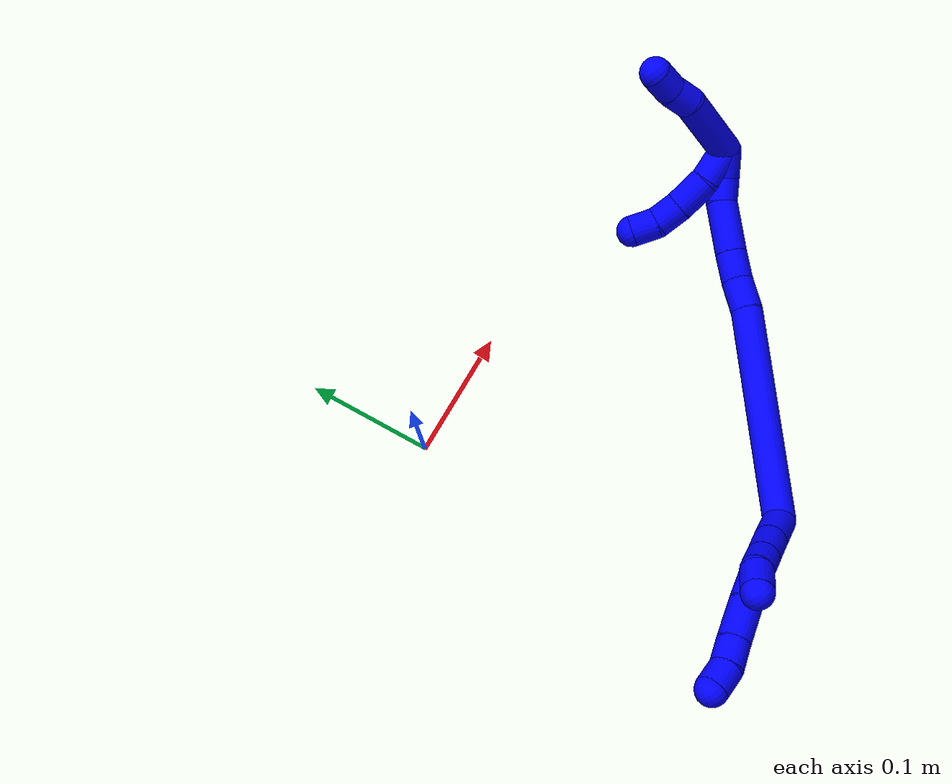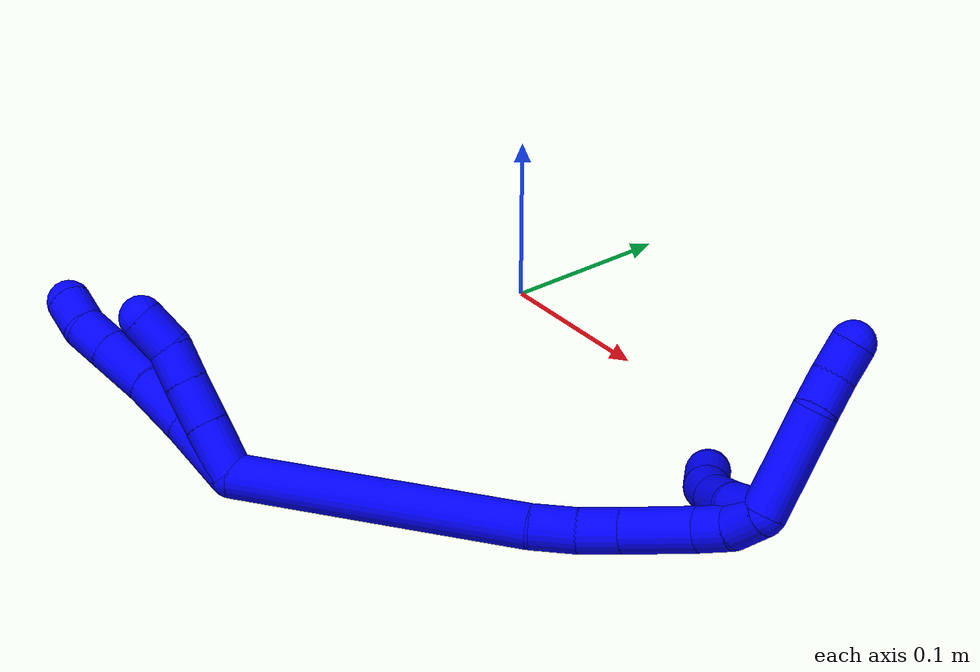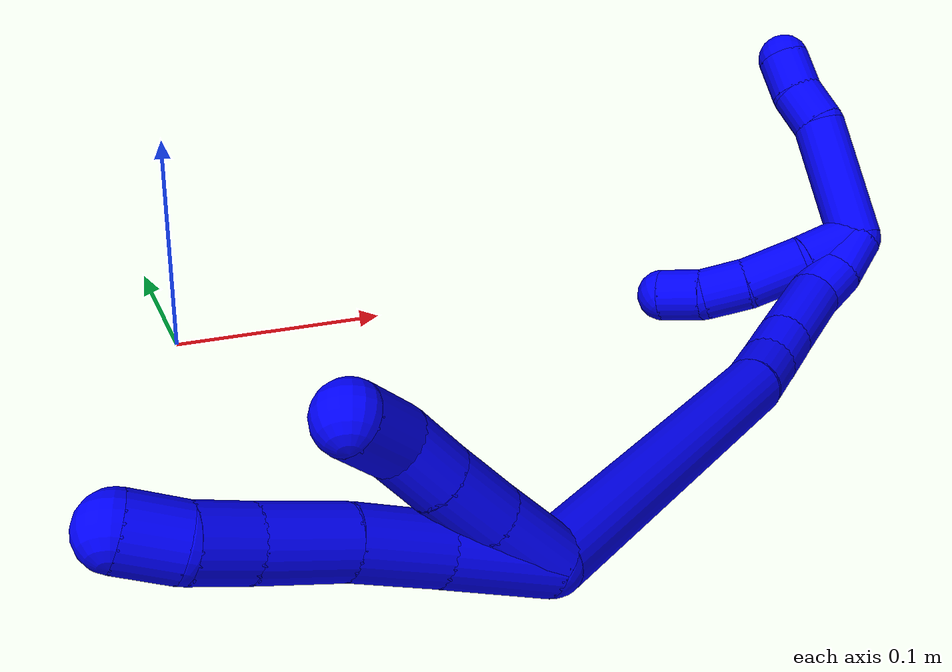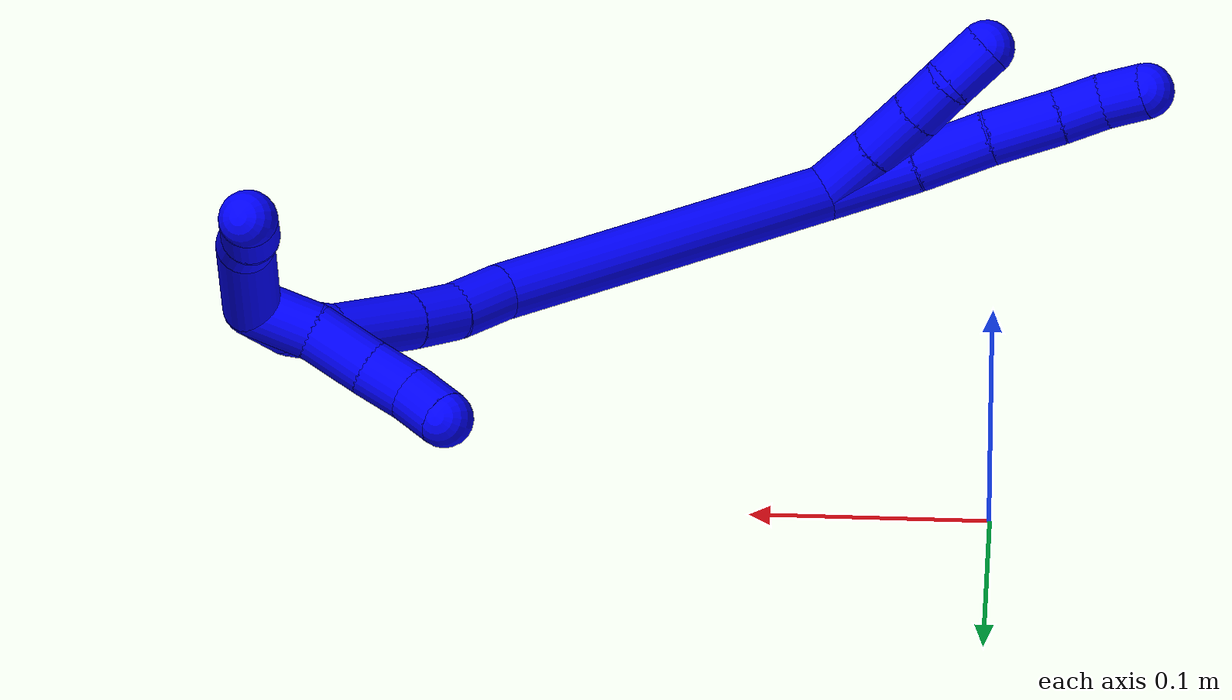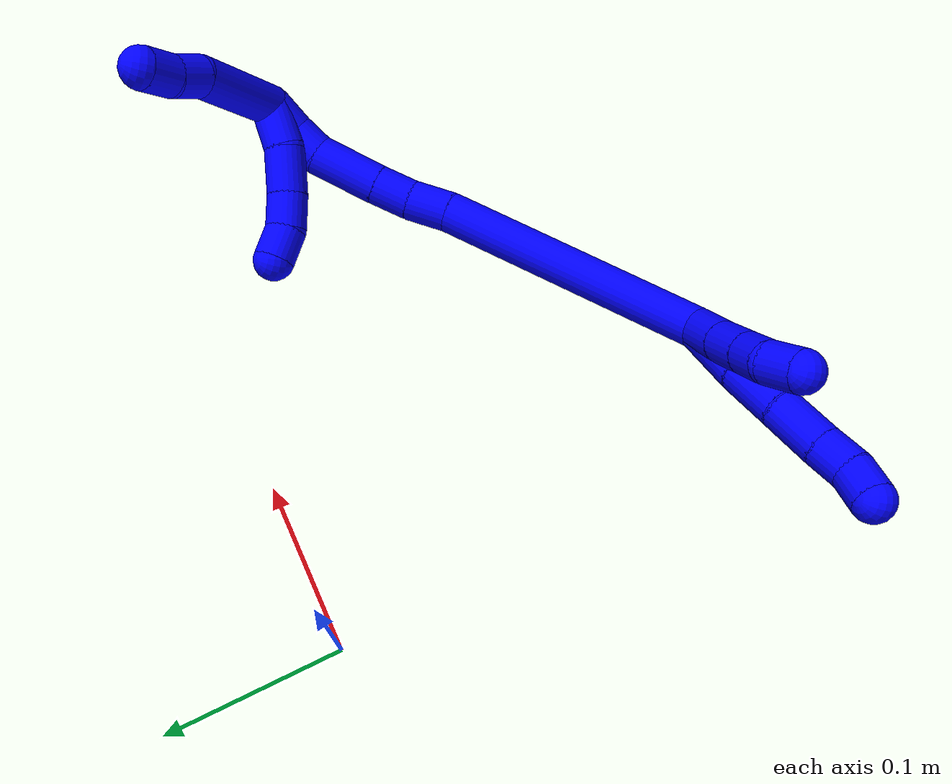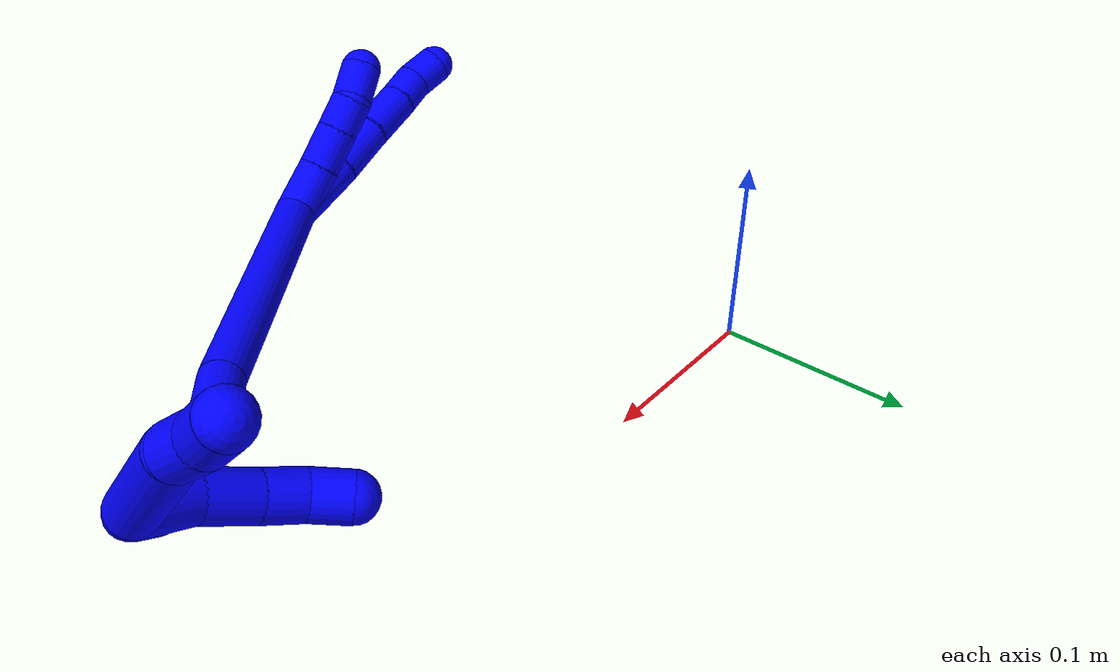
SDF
<sdf version="1.7">
 <world name="default">
  <model name="1">
   <static>0</static>
   <link name="1">
    <collision name="collision-cylinder-e_1_2_8">
     <pose>-0.013292 -0.016624 0.002134 1.4431 -0.670501 -0.594869</pose>
     <geometry><cylinder><radius>0.0125</radius><length>0.042782</length></cylinder></geometry>
     <surface>
      <friction><ode><mu>1.16</mu><mu2>1.16</mu2><slip1>0</slip1><slip2>0</slip2></ode></friction>
      <contact><ode><kp>1e+06</kp><kd>1</kd><max_vel>0</max_vel><min_depth>0.001</min_depth></ode></contact>
     </surface>
    </collision>
    <visual name="visual-cylinder-e_1_2_8">
     <pose>-0.013292 -0.016624 0.002134 1.4431 -0.670501 -0.594869</pose>
     <geometry><cylinder><radius>0.0125</radius><length>0.042782</length></cylinder></geometry>
     <material><ambient>0 0 1 1</ambient></material>
    </visual>
    <collision name="collision-cylinder-e_2_8_9">
     <pose>-0.037803 -0.045818 0.006668 1.38218 -0.719754 -0.603463</pose>
     <geometry><cylinder><radius>0.0125</radius><length>0.034038</length></cylinder></geometry>
     <surface>
      <friction><ode><mu>1.16</mu><mu2>1.16</mu2><slip1>0</slip1><slip2>0</slip2></ode></friction>
      <contact><ode><kp>1e+06</kp><kd>1</kd><max_vel>0</max_vel><min_depth>0.001</min_depth></ode></contact>
     </surface>
    </collision>
    <visual name="visual-cylinder-e_2_8_9">
     <pose>-0.037803 -0.045818 0.006668 1.38218 -0.719754 -0.603463</pose>
     <geometry><cylinder><radius>0.0125</radius><length>0.034038</length></cylinder></geometry>
     <material><ambient>0 0 1 1</ambient></material>
    </visual>
    <collision name="collision-cylinder-e_3_9_10">
     <pose>-0.059003 -0.070607 0.012563 1.29221 -0.665801 -0.510113</pose>
     <geometry><cylinder><radius>0.0125</radius><length>0.032318</length></cylinder></geometry>
     <surface>
      <friction><ode><mu>1.16</mu><mu2>1.16</mu2><slip1>0</slip1><slip2>0</slip2></ode></friction>
      <contact><ode><kp>1e+06</kp><kd>1</kd><max_vel>0</max_vel><min_depth>0.001</min_depth></ode></contact>
     </surface>
    </collision>
    <visual name="visual-cylinder-e_3_9_10">
     <pose>-0.059003 -0.070607 0.012563 1.29221 -0.665801 -0.510113</pose>
     <geometry><cylinder><radius>0.0125</radius><length>0.032318</length></cylinder></geometry>
     <material><ambient>0 0 1 1</ambient></material>
    </visual>
    <collision name="collision-cylinder-e_4_10_11">
     <pose>-0.075788 -0.090379 0.018299 1.2823 -0.712213 -0.541579</pose>
     <geometry><cylinder><radius>0.0125</radius><length>0.020822</length></cylinder></geometry>
     <surface>
      <friction><ode><mu>1.16</mu><mu2>1.16</mu2><slip1>0</slip1><slip2>0</slip2></ode></friction>
      <contact><ode><kp>1e+06</kp><kd>1</kd><max_vel>0</max_vel><min_depth>0.001</min_depth></ode></contact>
     </surface>
    </collision>
    <visual name="visual-cylinder-e_4_10_11">
     <pose>-0.075788 -0.090379 0.018299 1.2823 -0.712213 -0.541579</pose>
     <geometry><cylinder><radius>0.0125</radius><length>0.020822</length></cylinder></geometry>
     <material><ambient>0 0 1 1</ambient></material>
    </visual>
    <collision name="collision-cylinder-e_5_11_6">
     <pose>-0.08814 -0.10627 0.020207 1.61086 -0.586874 -0.609439</pose>
     <geometry><cylinder><radius>0.0125</radius><length>0.02004</length></cylinder></geometry>
     <surface>
      <friction><ode><mu>1.16</mu><mu2>1.16</mu2><slip1>0</slip1><slip2>0</slip2></ode></friction>
      <contact><ode><kp>1e+06</kp><kd>1</kd><max_vel>0</max_vel><min_depth>0.001</min_depth></ode></contact>
     </surface>
    </collision>
    <visual name="visual-cylinder-e_5_11_6">
     <pose>-0.08814 -0.10627 0.020207 1.61086 -0.586874 -0.609439</pose>
     <geometry><cylinder><radius>0.0125</radius><length>0.02004</length></cylinder></geometry>
     <material><ambient>0 0 1 1</ambient></material>
    </visual>
    <collision name="collision-cylinder-e_1_2_12">
     <pose>-0.012804 -0.008032 -0.002711 1.89627 -0.985976 -1.28483</pose>
     <geometry><cylinder><radius>0.0125</radius><length>0.030711</length></cylinder></geometry>
     <surface>
      <friction><ode><mu>1.16</mu><mu2>1.16</mu2><slip1>0</slip1><slip2>0</slip2></ode></friction>
      <contact><ode><kp>1e+06</kp><kd>1</kd><max_vel>0</max_vel><min_depth>0.001</min_depth></ode></contact>
     </surface>
    </collision>
    <visual name="visual-cylinder-e_1_2_12">
     <pose>-0.012804 -0.008032 -0.002711 1.89627 -0.985976 -1.28483</pose>
     <geometry><cylinder><radius>0.0125</radius><length>0.030711</length></cylinder></geometry>
     <material><ambient>0 0 1 1</ambient></material>
    </visual>
    <collision name="collision-cylinder-e_2_12_13">
     <pose>-0.03655 -0.022387 -0.007626 1.90637 -1.02163 -1.33599</pose>
     <geometry><cylinder><radius>0.0125</radius><length>0.025658</length></cylinder></geometry>
     <surface>
      <friction><ode><mu>1.16</mu><mu2>1.16</mu2><slip1>0</slip1><slip2>0</slip2></ode></friction>
      <contact><ode><kp>1e+06</kp><kd>1</kd><max_vel>0</max_vel><min_depth>0.001</min_depth></ode></contact>
     </surface>
    </collision>
    <visual name="visual-cylinder-e_2_12_13">
     <pose>-0.03655 -0.022387 -0.007626 1.90637 -1.02163 -1.33599</pose>
     <geometry><cylinder><radius>0.0125</radius><length>0.025658</length></cylinder></geometry>
     <material><ambient>0 0 1 1</ambient></material>
    </visual>
    <collision name="collision-cylinder-e_3_13_14">
     <pose>-0.05648 -0.03374 -0.01196 1.97099 -1.02469 -1.40738</pose>
     <geometry><cylinder><radius>0.0125</radius><length>0.021034</length></cylinder></geometry>
     <surface>
      <friction><ode><mu>1.16</mu><mu2>1.16</mu2><slip1>0</slip1><slip2>0</slip2></ode></friction>
      <contact><ode><kp>1e+06</kp><kd>1</kd><max_vel>0</max_vel><min_depth>0.001</min_depth></ode></contact>
     </surface>
    </collision>
    <visual name="visual-cylinder-e_3_13_14">
     <pose>-0.05648 -0.03374 -0.01196 1.97099 -1.02469 -1.40738</pose>
     <geometry><cylinder><radius>0.0125</radius><length>0.021034</length></cylinder></geometry>
     <material><ambient>0 0 1 1</ambient></material>
    </visual>
    <collision name="collision-cylinder-e_4_14_5">
     <pose>-0.075611 -0.043574 -0.012788 1.30646 -1.11474 -0.890183</pose>
     <geometry><cylinder><radius>0.0125</radius><length>0.022597</length></cylinder></geometry>
     <surface>
      <friction><ode><mu>1.16</mu><mu2>1.16</mu2><slip1>0</slip1><slip2>0</slip2></ode></friction>
      <contact><ode><kp>1e+06</kp><kd>1</kd><max_vel>0</max_vel><min_depth>0.001</min_depth></ode></contact>
     </surface>
    </collision>
    <visual name="visual-cylinder-e_4_14_5">
     <pose>-0.075611 -0.043574 -0.012788 1.30646 -1.11474 -0.890183</pose>
     <geometry><cylinder><radius>0.0125</radius><length>0.022597</length></cylinder></geometry>
     <material><ambient>0 0 1 1</ambient></material>
    </visual>
    <collision name="collision-cylinder-e_1_2_15">
     <pose>0.044549 0.042963 -0.056622 -2.49251 0.559876 -1.41421</pose>
     <geometry><cylinder><radius>0.0125</radius><length>0.167768</length></cylinder></geometry>
     <surface>
      <friction><ode><mu>1.16</mu><mu2>1.16</mu2><slip1>0</slip1><slip2>0</slip2></ode></friction>
      <contact><ode><kp>1e+06</kp><kd>1</kd><max_vel>0</max_vel><min_depth>0.001</min_depth></ode></contact>
     </surface>
    </collision>
    <visual name="visual-cylinder-e_1_2_15">
     <pose>0.044549 0.042963 -0.056622 -2.49251 0.559876 -1.41421</pose>
     <geometry><cylinder><radius>0.0125</radius><length>0.167768</length></cylinder></geometry>
     <material><ambient>0 0 1 1</ambient></material>
    </visual>
    <collision name="collision-cylinder-e_2_15_16">
     <pose>0.096213 0.09086 -0.122879 -2.66825 0.581444 -1.78467</pose>
     <geometry><cylinder><radius>0.0125</radius><length>0.025907</length></cylinder></geometry>
     <surface>
      <friction><ode><mu>1.16</mu><mu2>1.16</mu2><slip1>0</slip1><slip2>0</slip2></ode></friction>
      <contact><ode><kp>1e+06</kp><kd>1</kd><max_vel>0</max_vel><min_depth>0.001</min_depth></ode></contact>
     </surface>
    </collision>
    <visual name="visual-cylinder-e_2_15_16">
     <pose>0.096213 0.09086 -0.122879 -2.66825 0.581444 -1.78467</pose>
     <geometry><cylinder><radius>0.0125</radius><length>0.025907</length></cylinder></geometry>
     <material><ambient>0 0 1 1</ambient></material>
    </visual>
    <collision name="collision-cylinder-e_3_16_17">
     <pose>0.10823 0.10112 -0.141677 -2.61515 0.43332 -1.36984</pose>
     <geometry><cylinder><radius>0.0125</radius><length>0.023356</length></cylinder></geometry>
     <surface>
      <friction><ode><mu>1.16</mu><mu2>1.16</mu2><slip1>0</slip1><slip2>0</slip2></ode></friction>
      <contact><ode><kp>1e+06</kp><kd>1</kd><max_vel>0</max_vel><min_depth>0.001</min_depth></ode></contact>
     </surface>
    </collision>
    <visual name="visual-cylinder-e_3_16_17">
     <pose>0.10823 0.10112 -0.141677 -2.61515 0.43332 -1.36984</pose>
     <geometry><cylinder><radius>0.0125</radius><length>0.023356</length></cylinder></geometry>
     <material><ambient>0 0 1 1</ambient></material>
    </visual>
    <collision name="collision-cylinder-e_4_17_18">
     <pose>0.121093 0.116513 -0.16718 -2.58938 0.393139 -1.22524</pose>
     <geometry><cylinder><radius>0.0125</radius><length>0.041554</length></cylinder></geometry>
     <surface>
      <friction><ode><mu>1.16</mu><mu2>1.16</mu2><slip1>0</slip1><slip2>0</slip2></ode></friction>
      <contact><ode><kp>1e+06</kp><kd>1</kd><max_vel>0</max_vel><min_depth>0.001</min_depth></ode></contact>
     </surface>
    </collision>
    <visual name="visual-cylinder-e_4_17_18">
     <pose>0.121093 0.116513 -0.16718 -2.58938 0.393139 -1.22524</pose>
     <geometry><cylinder><radius>0.0125</radius><length>0.041554</length></cylinder></geometry>
     <material><ambient>0 0 1 1</ambient></material>
    </visual>
    <collision name="collision-cylinder-e_5_18_19">
     <pose>0.13077 0.133427 -0.190688 -2.37923 0.171535 -0.422648</pose>
     <geometry><cylinder><radius>0.0125</radius><length>0.020122</length></cylinder></geometry>
     <surface>
      <friction><ode><mu>1.16</mu><mu2>1.16</mu2><slip1>0</slip1><slip2>0</slip2></ode></friction>
      <contact><ode><kp>1e+06</kp><kd>1</kd><max_vel>0</max_vel><min_depth>0.001</min_depth></ode></contact>
     </surface>
    </collision>
    <visual name="visual-cylinder-e_5_18_19">
     <pose>0.13077 0.133427 -0.190688 -2.37923 0.171535 -0.422648</pose>
     <geometry><cylinder><radius>0.0125</radius><length>0.020122</length></cylinder></geometry>
     <material><ambient>0 0 1 1</ambient></material>
    </visual>
    <collision name="collision-cylinder-e_6_19_1">
     <pose>0.131047 0.146721 -0.206207 -2.48401 -0.135639 0.393035</pose>
     <geometry><cylinder><radius>0.0125</radius><length>0.021294</length></cylinder></geometry>
     <surface>
      <friction><ode><mu>1.16</mu><mu2>1.16</mu2><slip1>0</slip1><slip2>0</slip2></ode></friction>
      <contact><ode><kp>1e+06</kp><kd>1</kd><max_vel>0</max_vel><min_depth>0.001</min_depth></ode></contact>
     </surface>
    </collision>
    <visual name="visual-cylinder-e_6_19_1">
     <pose>0.131047 0.146721 -0.206207 -2.48401 -0.135639 0.393035</pose>
     <geometry><cylinder><radius>0.0125</radius><length>0.021294</length></cylinder></geometry>
     <material><ambient>0 0 1 1</ambient></material>
    </visual>
    <collision name="collision-cylinder-e_1_1_20">
     <pose>0.116433 0.149737 -0.2412 3.0135 -0.455974 -2.60223</pose>
     <geometry><cylinder><radius>0.0125</radius><length>0.059841</length></cylinder></geometry>
     <surface>
      <friction><ode><mu>1.16</mu><mu2>1.16</mu2><slip1>0</slip1><slip2>0</slip2></ode></friction>
      <contact><ode><kp>1e+06</kp><kd>1</kd><max_vel>0</max_vel><min_depth>0.001</min_depth></ode></contact>
     </surface>
    </collision>
    <visual name="visual-cylinder-e_1_1_20">
     <pose>0.116433 0.149737 -0.2412 3.0135 -0.455974 -2.60223</pose>
     <geometry><cylinder><radius>0.0125</radius><length>0.059841</length></cylinder></geometry>
     <material><ambient>0 0 1 1</ambient></material>
    </visual>
    <collision name="collision-cylinder-e_2_20_21">
     <pose>0.100506 0.142647 -0.276809 2.75411 -0.276831 -1.23484</pose>
     <geometry><cylinder><radius>0.0125</radius><length>0.020132</length></cylinder></geometry>
     <surface>
      <friction><ode><mu>1.16</mu><mu2>1.16</mu2><slip1>0</slip1><slip2>0</slip2></ode></friction>
      <contact><ode><kp>1e+06</kp><kd>1</kd><max_vel>0</max_vel><min_depth>0.001</min_depth></ode></contact>
     </surface>
    </collision>
    <visual name="visual-cylinder-e_2_20_21">
     <pose>0.100506 0.142647 -0.276809 2.75411 -0.276831 -1.23484</pose>
     <geometry><cylinder><radius>0.0125</radius><length>0.020132</length></cylinder></geometry>
     <material><ambient>0 0 1 1</ambient></material>
    </visual>
    <collision name="collision-cylinder-e_3_21_4">
     <pose>0.094288 0.137356 -0.295025 2.96699 -0.353577 -2.2305</pose>
     <geometry><cylinder><radius>0.0125</radius><length>0.020027</length></cylinder></geometry>
     <surface>
      <friction><ode><mu>1.16</mu><mu2>1.16</mu2><slip1>0</slip1><slip2>0</slip2></ode></friction>
      <contact><ode><kp>1e+06</kp><kd>1</kd><max_vel>0</max_vel><min_depth>0.001</min_depth></ode></contact>
     </surface>
    </collision>
    <visual name="visual-cylinder-e_3_21_4">
     <pose>0.094288 0.137356 -0.295025 2.96699 -0.353577 -2.2305</pose>
     <geometry><cylinder><radius>0.0125</radius><length>0.020027</length></cylinder></geometry>
     <material><ambient>0 0 1 1</ambient></material>
    </visual>
    <collision name="collision-cylinder-e_1_1_22">
     <pose>0.129662 0.139802 -0.210023 1.24375 0.003854 0.002763</pose>
     <geometry><cylinder><radius>0.0125</radius><length>0.02823</length></cylinder></geometry>
     <surface>
      <friction><ode><mu>1.16</mu><mu2>1.16</mu2><slip1>0</slip1><slip2>0</slip2></ode></friction>
      <contact><ode><kp>1e+06</kp><kd>1</kd><max_vel>0</max_vel><min_depth>0.001</min_depth></ode></contact>
     </surface>
    </collision>
    <visual name="visual-cylinder-e_1_1_22">
     <pose>0.129662 0.139802 -0.210023 1.24375 0.003854 0.002763</pose>
     <geometry><cylinder><radius>0.0125</radius><length>0.02823</length></cylinder></geometry>
     <material><ambient>0 0 1 1</ambient></material>
    </visual>
    <collision name="collision-cylinder-e_2_22_23">
     <pose>0.132551 0.112475 -0.203365 1.41986 0.198068 0.170366</pose>
     <geometry><cylinder><radius>0.0125</radius><length>0.028805</length></cylinder></geometry>
     <surface>
      <friction><ode><mu>1.16</mu><mu2>1.16</mu2><slip1>0</slip1><slip2>0</slip2></ode></friction>
      <contact><ode><kp>1e+06</kp><kd>1</kd><max_vel>0</max_vel><min_depth>0.001</min_depth></ode></contact>
     </surface>
    </collision>
    <visual name="visual-cylinder-e_2_22_23">
     <pose>0.132551 0.112475 -0.203365 1.41986 0.198068 0.170366</pose>
     <geometry><cylinder><radius>0.0125</radius><length>0.028805</length></cylinder></geometry>
     <material><ambient>0 0 1 1</ambient></material>
    </visual>
    <collision name="collision-cylinder-e_3_23_24">
     <pose>0.137019 0.087647 -0.201123 1.55992 0.149247 0.147638</pose>
     <geometry><cylinder><radius>0.0125</radius><length>0.02198</length></cylinder></geometry>
     <surface>
      <friction><ode><mu>1.16</mu><mu2>1.16</mu2><slip1>0</slip1><slip2>0</slip2></ode></friction>
      <contact><ode><kp>1e+06</kp><kd>1</kd><max_vel>0</max_vel><min_depth>0.001</min_depth></ode></contact>
     </surface>
    </collision>
    <visual name="visual-cylinder-e_3_23_24">
     <pose>0.137019 0.087647 -0.201123 1.55992 0.149247 0.147638</pose>
     <geometry><cylinder><radius>0.0125</radius><length>0.02198</length></cylinder></geometry>
     <material><ambient>0 0 1 1</ambient></material>
    </visual>
    <collision name="collision-cylinder-e_4_24_3">
     <pose>0.14064 0.066965 -0.204136 1.87953 0.190543 0.260084</pose>
     <geometry><cylinder><radius>0.0125</radius><length>0.020985</length></cylinder></geometry>
     <surface>
      <friction><ode><mu>1.16</mu><mu2>1.16</mu2><slip1>0</slip1><slip2>0</slip2></ode></friction>
      <contact><ode><kp>1e+06</kp><kd>1</kd><max_vel>0</max_vel><min_depth>0.001</min_depth></ode></contact>
     </surface>
    </collision>
    <visual name="visual-cylinder-e_4_24_3">
     <pose>0.14064 0.066965 -0.204136 1.87953 0.190543 0.260084</pose>
     <geometry><cylinder><radius>0.0125</radius><length>0.020985</length></cylinder></geometry>
     <material><ambient>0 0 1 1</ambient></material>
    </visual>
    <collision name="collision-sphere-3">
     <pose>0.142627 0.057149 -0.207266 0 -0 0</pose>
     <geometry><sphere><radius>0.0125</radius></sphere></geometry>
     <surface>
      <friction><ode><mu>1.16</mu><mu2>1.16</mu2><slip1>0</slip1><slip2>0</slip2></ode></friction>
      <contact><ode><kp>1e+06</kp><kd>1</kd><max_vel>0</max_vel><min_depth>0.001</min_depth></ode></contact>
     </surface>
    </collision>
    <visual name="visual-sphere-3">
     <pose>0.142627 0.057149 -0.207266 0 -0 0</pose>
     <geometry><sphere><radius>0.0125</radius></sphere></geometry>
     <material><ambient>0 0 1 1</ambient></material>
    </visual>
    <collision name="collision-sphere-24">
     <pose>0.138653 0.07678 -0.201005 0 -0 0</pose>
     <geometry><sphere><radius>0.0125</radius></sphere></geometry>
     <surface>
      <friction><ode><mu>1.16</mu><mu2>1.16</mu2><slip1>0</slip1><slip2>0</slip2></ode></friction>
      <contact><ode><kp>1e+06</kp><kd>1</kd><max_vel>0</max_vel><min_depth>0.001</min_depth></ode></contact>
     </surface>
    </collision>
    <visual name="visual-sphere-24">
     <pose>0.138653 0.07678 -0.201005 0 -0 0</pose>
     <geometry><sphere><radius>0.0125</radius></sphere></geometry>
     <material><ambient>0 0 1 1</ambient></material>
    </visual>
    <collision name="collision-sphere-23">
     <pose>0.135385 0.098515 -0.201242 0 -0 0</pose>
     <geometry><sphere><radius>0.0125</radius></sphere></geometry>
     <surface>
      <friction><ode><mu>1.16</mu><mu2>1.16</mu2><slip1>0</slip1><slip2>0</slip2></ode></friction>
      <contact><ode><kp>1e+06</kp><kd>1</kd><max_vel>0</max_vel><min_depth>0.001</min_depth></ode></contact>
     </surface>
    </collision>
    <visual name="visual-sphere-23">
     <pose>0.135385 0.098515 -0.201242 0 -0 0</pose>
     <geometry><sphere><radius>0.0125</radius></sphere></geometry>
     <material><ambient>0 0 1 1</ambient></material>
    </visual>
    <collision name="collision-sphere-22">
     <pose>0.129717 0.126435 -0.205488 0 -0 0</pose>
     <geometry><sphere><radius>0.0125</radius></sphere></geometry>
     <surface>
      <friction><ode><mu>1.16</mu><mu2>1.16</mu2><slip1>0</slip1><slip2>0</slip2></ode></friction>
      <contact><ode><kp>1e+06</kp><kd>1</kd><max_vel>0</max_vel><min_depth>0.001</min_depth></ode></contact>
     </surface>
    </collision>
    <visual name="visual-sphere-22">
     <pose>0.129717 0.126435 -0.205488 0 -0 0</pose>
     <geometry><sphere><radius>0.0125</radius></sphere></geometry>
     <material><ambient>0 0 1 1</ambient></material>
    </visual>
    <collision name="collision-sphere-4">
     <pose>0.090821 0.135724 -0.304276 0 -0 0</pose>
     <geometry><sphere><radius>0.0125</radius></sphere></geometry>
     <surface>
      <friction><ode><mu>1.16</mu><mu2>1.16</mu2><slip1>0</slip1><slip2>0</slip2></ode></friction>
      <contact><ode><kp>1e+06</kp><kd>1</kd><max_vel>0</max_vel><min_depth>0.001</min_depth></ode></contact>
     </surface>
    </collision>
    <visual name="visual-sphere-4">
     <pose>0.090821 0.135724 -0.304276 0 -0 0</pose>
     <geometry><sphere><radius>0.0125</radius></sphere></geometry>
     <material><ambient>0 0 1 1</ambient></material>
    </visual>
    <collision name="collision-sphere-21">
     <pose>0.097755 0.138988 -0.285774 0 -0 0</pose>
     <geometry><sphere><radius>0.0125</radius></sphere></geometry>
     <surface>
      <friction><ode><mu>1.16</mu><mu2>1.16</mu2><slip1>0</slip1><slip2>0</slip2></ode></friction>
      <contact><ode><kp>1e+06</kp><kd>1</kd><max_vel>0</max_vel><min_depth>0.001</min_depth></ode></contact>
     </surface>
    </collision>
    <visual name="visual-sphere-21">
     <pose>0.097755 0.138988 -0.285774 0 -0 0</pose>
     <geometry><sphere><radius>0.0125</radius></sphere></geometry>
     <material><ambient>0 0 1 1</ambient></material>
    </visual>
    <collision name="collision-sphere-20">
     <pose>0.103258 0.146305 -0.267844 0 -0 0</pose>
     <geometry><sphere><radius>0.0125</radius></sphere></geometry>
     <surface>
      <friction><ode><mu>1.16</mu><mu2>1.16</mu2><slip1>0</slip1><slip2>0</slip2></ode></friction>
      <contact><ode><kp>1e+06</kp><kd>1</kd><max_vel>0</max_vel><min_depth>0.001</min_depth></ode></contact>
     </surface>
    </collision>
    <visual name="visual-sphere-20">
     <pose>0.103258 0.146305 -0.267844 0 -0 0</pose>
     <geometry><sphere><radius>0.0125</radius></sphere></geometry>
     <material><ambient>0 0 1 1</ambient></material>
    </visual>
    <collision name="collision-sphere-6">
     <pose>-0.093689 -0.114607 0.019873 0 -0 0</pose>
     <geometry><sphere><radius>0.0125</radius></sphere></geometry>
     <surface>
      <friction><ode><mu>1.16</mu><mu2>1.16</mu2><slip1>0</slip1><slip2>0</slip2></ode></friction>
      <contact><ode><kp>1e+06</kp><kd>1</kd><max_vel>0</max_vel><min_depth>0.001</min_depth></ode></contact>
     </surface>
    </collision>
    <visual name="visual-sphere-6">
     <pose>-0.093689 -0.114607 0.019873 0 -0 0</pose>
     <geometry><sphere><radius>0.0125</radius></sphere></geometry>
     <material><ambient>0 0 1 1</ambient></material>
    </visual>
    <collision name="collision-sphere-11">
     <pose>-0.082592 -0.097934 0.020541 0 -0 0</pose>
     <geometry><sphere><radius>0.0125</radius></sphere></geometry>
     <surface>
      <friction><ode><mu>1.16</mu><mu2>1.16</mu2><slip1>0</slip1><slip2>0</slip2></ode></friction>
      <contact><ode><kp>1e+06</kp><kd>1</kd><max_vel>0</max_vel><min_depth>0.001</min_depth></ode></contact>
     </surface>
    </collision>
    <visual name="visual-sphere-11">
     <pose>-0.082592 -0.097934 0.020541 0 -0 0</pose>
     <geometry><sphere><radius>0.0125</radius></sphere></geometry>
     <material><ambient>0 0 1 1</ambient></material>
    </visual>
    <collision name="collision-sphere-10">
     <pose>-0.068984 -0.082825 0.016057 0 -0 0</pose>
     <geometry><sphere><radius>0.0125</radius></sphere></geometry>
     <surface>
      <friction><ode><mu>1.16</mu><mu2>1.16</mu2><slip1>0</slip1><slip2>0</slip2></ode></friction>
      <contact><ode><kp>1e+06</kp><kd>1</kd><max_vel>0</max_vel><min_depth>0.001</min_depth></ode></contact>
     </surface>
    </collision>
    <visual name="visual-sphere-10">
     <pose>-0.068984 -0.082825 0.016057 0 -0 0</pose>
     <geometry><sphere><radius>0.0125</radius></sphere></geometry>
     <material><ambient>0 0 1 1</ambient></material>
    </visual>
    <collision name="collision-sphere-9">
     <pose>-0.049022 -0.058389 0.009068 0 -0 0</pose>
     <geometry><sphere><radius>0.0125</radius></sphere></geometry>
     <surface>
      <friction><ode><mu>1.16</mu><mu2>1.16</mu2><slip1>0</slip1><slip2>0</slip2></ode></friction>
      <contact><ode><kp>1e+06</kp><kd>1</kd><max_vel>0</max_vel><min_depth>0.001</min_depth></ode></contact>
     </surface>
    </collision>
    <visual name="visual-sphere-9">
     <pose>-0.049022 -0.058389 0.009068 0 -0 0</pose>
     <geometry><sphere><radius>0.0125</radius></sphere></geometry>
     <material><ambient>0 0 1 1</ambient></material>
    </visual>
    <collision name="collision-sphere-2">
     <geometry><sphere><radius>0.0125</radius></sphere></geometry>
     <surface>
      <friction><ode><mu>1.16</mu><mu2>1.16</mu2><slip1>0</slip1><slip2>0</slip2></ode></friction>
      <contact><ode><kp>1e+06</kp><kd>1</kd><max_vel>0</max_vel><min_depth>0.001</min_depth></ode></contact>
     </surface>
    </collision>
    <visual name="visual-sphere-2">
     <geometry><sphere><radius>0.0125</radius></sphere></geometry>
     <material><ambient>0 0 1 1</ambient></material>
    </visual>
    <collision name="collision-sphere-19">
     <pose>0.132487 0.140273 -0.197858 0 -0 0</pose>
     <geometry><sphere><radius>0.0125</radius></sphere></geometry>
     <surface>
      <friction><ode><mu>1.16</mu><mu2>1.16</mu2><slip1>0</slip1><slip2>0</slip2></ode></friction>
      <contact><ode><kp>1e+06</kp><kd>1</kd><max_vel>0</max_vel><min_depth>0.001</min_depth></ode></contact>
     </surface>
    </collision>
    <visual name="visual-sphere-19">
     <pose>0.132487 0.140273 -0.197858 0 -0 0</pose>
     <geometry><sphere><radius>0.0125</radius></sphere></geometry>
     <material><ambient>0 0 1 1</ambient></material>
    </visual>
    <collision name="collision-sphere-8">
     <pose>-0.026584 -0.033247 0.004269 0 -0 0</pose>
     <geometry><sphere><radius>0.0125</radius></sphere></geometry>
     <surface>
      <friction><ode><mu>1.16</mu><mu2>1.16</mu2><slip1>0</slip1><slip2>0</slip2></ode></friction>
      <contact><ode><kp>1e+06</kp><kd>1</kd><max_vel>0</max_vel><min_depth>0.001</min_depth></ode></contact>
     </surface>
    </collision>
    <visual name="visual-sphere-8">
     <pose>-0.026584 -0.033247 0.004269 0 -0 0</pose>
     <geometry><sphere><radius>0.0125</radius></sphere></geometry>
     <material><ambient>0 0 1 1</ambient></material>
    </visual>
    <collision name="collision-sphere-12">
     <pose>-0.025608 -0.016064 -0.005421 0 -0 0</pose>
     <geometry><sphere><radius>0.0125</radius></sphere></geometry>
     <surface>
      <friction><ode><mu>1.16</mu><mu2>1.16</mu2><slip1>0</slip1><slip2>0</slip2></ode></friction>
      <contact><ode><kp>1e+06</kp><kd>1</kd><max_vel>0</max_vel><min_depth>0.001</min_depth></ode></contact>
     </surface>
    </collision>
    <visual name="visual-sphere-12">
     <pose>-0.025608 -0.016064 -0.005421 0 -0 0</pose>
     <geometry><sphere><radius>0.0125</radius></sphere></geometry>
     <material><ambient>0 0 1 1</ambient></material>
    </visual>
    <collision name="collision-sphere-13">
     <pose>-0.047493 -0.02871 -0.009832 0 -0 0</pose>
     <geometry><sphere><radius>0.0125</radius></sphere></geometry>
     <surface>
      <friction><ode><mu>1.16</mu><mu2>1.16</mu2><slip1>0</slip1><slip2>0</slip2></ode></friction>
      <contact><ode><kp>1e+06</kp><kd>1</kd><max_vel>0</max_vel><min_depth>0.001</min_depth></ode></contact>
     </surface>
    </collision>
    <visual name="visual-sphere-13">
     <pose>-0.047493 -0.02871 -0.009832 0 -0 0</pose>
     <geometry><sphere><radius>0.0125</radius></sphere></geometry>
     <material><ambient>0 0 1 1</ambient></material>
    </visual>
    <collision name="collision-sphere-14">
     <pose>-0.065467 -0.038771 -0.014088 0 -0 0</pose>
     <geometry><sphere><radius>0.0125</radius></sphere></geometry>
     <surface>
      <friction><ode><mu>1.16</mu><mu2>1.16</mu2><slip1>0</slip1><slip2>0</slip2></ode></friction>
      <contact><ode><kp>1e+06</kp><kd>1</kd><max_vel>0</max_vel><min_depth>0.001</min_depth></ode></contact>
     </surface>
    </collision>
    <visual name="visual-sphere-14">
     <pose>-0.065467 -0.038771 -0.014088 0 -0 0</pose>
     <geometry><sphere><radius>0.0125</radius></sphere></geometry>
     <material><ambient>0 0 1 1</ambient></material>
    </visual>
    <collision name="collision-sphere-5">
     <pose>-0.085755 -0.048377 -0.011488 0 -0 0</pose>
     <geometry><sphere><radius>0.0125</radius></sphere></geometry>
     <surface>
      <friction><ode><mu>1.16</mu><mu2>1.16</mu2><slip1>0</slip1><slip2>0</slip2></ode></friction>
      <contact><ode><kp>1e+06</kp><kd>1</kd><max_vel>0</max_vel><min_depth>0.001</min_depth></ode></contact>
     </surface>
    </collision>
    <visual name="visual-sphere-5">
     <pose>-0.085755 -0.048377 -0.011488 0 -0 0</pose>
     <geometry><sphere><radius>0.0125</radius></sphere></geometry>
     <material><ambient>0 0 1 1</ambient></material>
    </visual>
    <collision name="collision-sphere-15">
     <pose>0.089098 0.085925 -0.113245 0 -0 0</pose>
     <geometry><sphere><radius>0.0125</radius></sphere></geometry>
     <surface>
      <friction><ode><mu>1.16</mu><mu2>1.16</mu2><slip1>0</slip1><slip2>0</slip2></ode></friction>
      <contact><ode><kp>1e+06</kp><kd>1</kd><max_vel>0</max_vel><min_depth>0.001</min_depth></ode></contact>
     </surface>
    </collision>
    <visual name="visual-sphere-15">
     <pose>0.089098 0.085925 -0.113245 0 -0 0</pose>
     <geometry><sphere><radius>0.0125</radius></sphere></geometry>
     <material><ambient>0 0 1 1</ambient></material>
    </visual>
    <collision name="collision-sphere-16">
     <pose>0.103327 0.095794 -0.132514 0 -0 0</pose>
     <geometry><sphere><radius>0.0125</radius></sphere></geometry>
     <surface>
      <friction><ode><mu>1.16</mu><mu2>1.16</mu2><slip1>0</slip1><slip2>0</slip2></ode></friction>
      <contact><ode><kp>1e+06</kp><kd>1</kd><max_vel>0</max_vel><min_depth>0.001</min_depth></ode></contact>
     </surface>
    </collision>
    <visual name="visual-sphere-16">
     <pose>0.103327 0.095794 -0.132514 0 -0 0</pose>
     <geometry><sphere><radius>0.0125</radius></sphere></geometry>
     <material><ambient>0 0 1 1</ambient></material>
    </visual>
    <collision name="collision-sphere-17">
     <pose>0.113134 0.106445 -0.150841 0 -0 0</pose>
     <geometry><sphere><radius>0.0125</radius></sphere></geometry>
     <surface>
      <friction><ode><mu>1.16</mu><mu2>1.16</mu2><slip1>0</slip1><slip2>0</slip2></ode></friction>
      <contact><ode><kp>1e+06</kp><kd>1</kd><max_vel>0</max_vel><min_depth>0.001</min_depth></ode></contact>
     </surface>
    </collision>
    <visual name="visual-sphere-17">
     <pose>0.113134 0.106445 -0.150841 0 -0 0</pose>
     <geometry><sphere><radius>0.0125</radius></sphere></geometry>
     <material><ambient>0 0 1 1</ambient></material>
    </visual>
    <collision name="collision-sphere-18">
     <pose>0.129053 0.12658 -0.183519 0 -0 0</pose>
     <geometry><sphere><radius>0.0125</radius></sphere></geometry>
     <surface>
      <friction><ode><mu>1.16</mu><mu2>1.16</mu2><slip1>0</slip1><slip2>0</slip2></ode></friction>
      <contact><ode><kp>1e+06</kp><kd>1</kd><max_vel>0</max_vel><min_depth>0.001</min_depth></ode></contact>
     </surface>
    </collision>
    <visual name="visual-sphere-18">
     <pose>0.129053 0.12658 -0.183519 0 -0 0</pose>
     <geometry><sphere><radius>0.0125</radius></sphere></geometry>
     <material><ambient>0 0 1 1</ambient></material>
    </visual>
    <collision name="collision-sphere-1">
     <pose>0.129608 0.153169 -0.214557 0 -0 0</pose>
     <geometry><sphere><radius>0.0125</radius></sphere></geometry>
     <surface>
      <friction><ode><mu>1.16</mu><mu2>1.16</mu2><slip1>0</slip1><slip2>0</slip2></ode></friction>
      <contact><ode><kp>1e+06</kp><kd>1</kd><max_vel>0</max_vel><min_depth>0.001</min_depth></ode></contact>
     </surface>
    </collision>
    <visual name="visual-sphere-1">
     <pose>0.129608 0.153169 -0.214557 0 -0 0</pose>
     <geometry><sphere><radius>0.0125</radius></sphere></geometry>
     <material><ambient>0 0 1 1</ambient></material>
    </visual>
    <inertial>
     <pose>0.047913 0.048794 -0.10251 0 -0 0</pose>
     <mass>0.75</mass>
     <inertia>
      <ixx>-0.000309</ixx>
      <ixy>0</ixy>
      <ixz>0</ixz>
      <iyy>-0.000267</iyy>
      <iyz>0</iyz>
      <izz>-0.000391</izz>
     </inertia>
    </inertial>
   </link>
   <pose>0.079255 -0.261864 0.012192 2.82964 0.986659 0.904335</pose>
  </model>
 </world>
</sdf>
